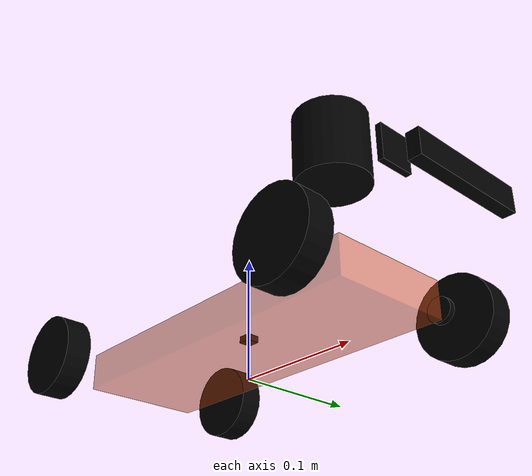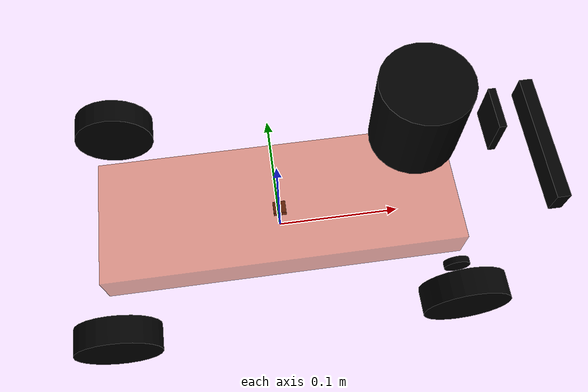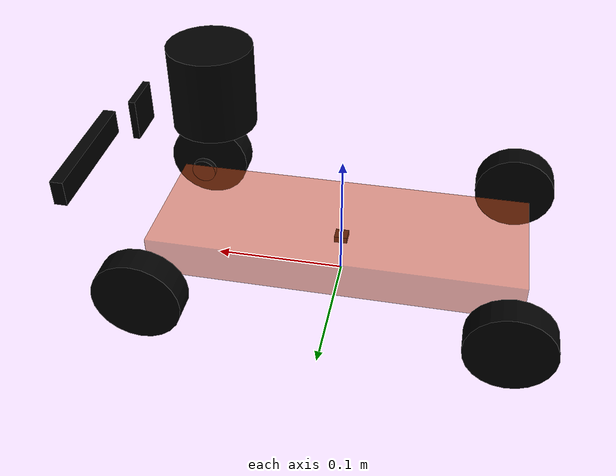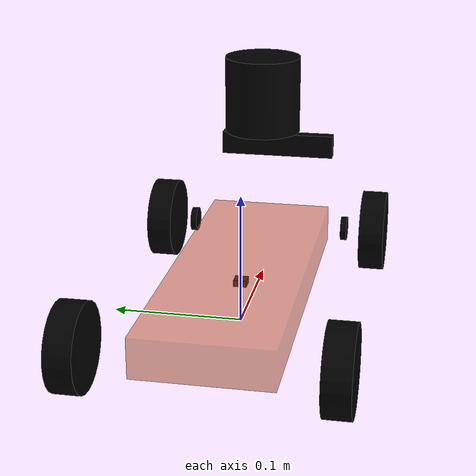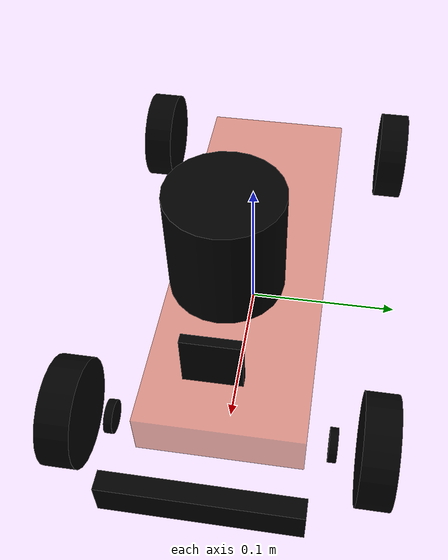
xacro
<?xml version="1.0" encoding="utf-8"?>

<robot name="racecar" xmlns:xacro="http://www.ros.org/wiki/xacro">

    <link name="base_footprint">
        <origin xyz="0 0 0" rpy="0 0 0" />
    </link>

    <link name="base_link">
        <visual>
            <geometry>
                <box size="0.28 0.1 0.03" />
            </geometry>
            <origin xyz="0 0 0" rpy="0 0 0" />
            <material name="yellow">
                <color rgba="0.8 0.3 0.1 0.5" />
            </material>
        </visual>
        <collision>
            <geometry>
                <box size="0.28 0.1 0.03" />
            </geometry>
            <origin xyz="0.0 0.0 0.0" rpy="0.0 0.0 0.0" />
        </collision>

    </link>

    <joint name="base_link2base_footprint" type="fixed">
        <parent link="base_footprint" />
        <child link="base_link" />
        <origin xyz="0 0 0.032" rpy="0 0 0" />
    </joint>

    <link name="base_inertia">
        <inertial>
            <origin xyz="0 0 0" />
            <mass value="4" />
            <inertia ixx="0.0264" ixy="0" ixz="0" iyy="0.0294" iyz="0" izz="0.00364" />
        </inertial>
    </link>

    <joint name="chassis_inertia_joint" type="fixed">
        <origin xyz="0 0 0" rpy="0 0 0" />
        <parent link="base_link" />
        <child link="base_inertia" />
    </joint>

    <link name="left_steering_hinge">
        <visual>
            <geometry>
                <cylinder radius="0.01" length="0.005" />
            </geometry>
            <origin xyz="0 0 0" rpy="1.57 0 0" />
            <material name="black">
                <color rgba="0.0 0.0 0.0 1.0" />
            </material>
        </visual>
        <collision>
            <geometry>
                <cylinder radius="0.01" length="0.005" />
            </geometry>
            <origin xyz="0.0 0.0 0.0" rpy="1.57 0.0 0.0" />
        </collision>
        <inertial>
            <origin xyz="0 0 0" />
            <mass value="0.5" />
            <inertia ixx="1.35E-05" ixy="0" ixz="0" iyy="1.35E-05" iyz="0" izz="2.5E-05" />
        </inertial>
    </link>

    <joint name="left_steering_hinge_joint" type="revolute">
        <parent link="base_link" />
        <child link="left_steering_hinge" />
        <origin xyz="0.13 0.065 0" />
        <axis xyz="0 0 1" />
        <limit lower="-0.6" upper="0.6" effort="5.0" velocity="1000.0" />
    </joint>

    <link name="left_front_wheel">
        <visual>
            <geometry>
                <cylinder radius="0.033" length="0.02" />
            </geometry>
            <origin xyz="0 0 0" rpy="1.57 0 0" />
            <material name="black">
                <color rgba="0.0 0.0 0.0 1.0" />
            </material>
        </visual>
        <collision>
            <geometry>
                <cylinder radius="0.032" length="0.02" />
            </geometry>
            <origin xyz="0.0 0.0 0.0" rpy="1.57 0.0 0.0" />
        </collision>
        <inertial>
            <origin xyz="0 0 0" />
            <mass value="2.0" />
            <inertia ixx="6.64E-04" ixy="0" ixz="0" iyy="6.64E-04" iyz="0" izz="1.02E-03" />
        </inertial>
    </link>

    <joint name="left_front_wheel_joint" type="continuous">
        <parent link="left_steering_hinge" />
        <child link="left_front_wheel" />
        <origin xyz="0 0.025 0" />
        <axis xyz="0 1 0" />
        <limit effort="10" velocity="1000" />
    </joint>

    <link name="right_steering_hinge">
        <visual>
            <geometry>
                <cylinder radius="0.01" length="0.005" />
            </geometry>
            <origin xyz="0 0 0" rpy="1.57 0 0" />
            <material name="black">
                <color rgba="0.0 0.0 0.0 1.0" />
            </material>
        </visual>
        <collision>
            <geometry>
                <cylinder radius="0.01" length="0.005" />
            </geometry>
            <origin xyz="0.0 0.0 0.0" rpy="1.57 0.0 0.0" />
        </collision>
        <inertial>
            <origin xyz="0 0 0" />
            <mass value="0.5" />
            <inertia ixx="1.35E-05" ixy="0" ixz="0" iyy="1.35E-05" iyz="0" izz="2.5E-05" />
        </inertial>
    </link>

    <joint name="right_steering_hinge_joint" type="revolute">
        <parent link="base_link" />
        <child link="right_steering_hinge" />
        <origin xyz="0.13 -0.065 0" />
        <axis xyz="0 0 1" />
        <limit lower="-0.6" upper="0.6" effort="5.0" velocity="1000.0" />
    </joint>

    <link name="right_front_wheel">
        <visual>
            <geometry>
                <cylinder radius="0.033" length="0.02" />
            </geometry>
            <origin xyz="0 0 0" rpy="1.57 0 0" />
            <material name="black">
                <color rgba="0.0 0.0 0.0 1.0" />
            </material>
        </visual>
        <collision>
            <geometry>
                <cylinder radius="0.032" length="0.02" />
            </geometry>
            <origin xyz="0.0 0.0 0.0" rpy="1.57 0.0 0.0" />
        </collision>
        <inertial>
            <origin xyz="0 0 0" />
            <mass value="2.0" />
            <inertia ixx="6.64E-04" ixy="0" ixz="0" iyy="6.64E-04" iyz="0" izz="1.02E-03" />
        </inertial>
    </link>

    <joint name="right_front_wheel_joint" type="continuous">
        <parent link="right_steering_hinge" />
        <child link="right_front_wheel" />
        <origin xyz="0 -0.025 0" />
        <axis xyz="0 1 0" />
        <limit effort="10" velocity="1000" />
    </joint>

    <link name="left_rear_wheel">
        <visual>
            <geometry>
                <cylinder radius="0.032" length="0.02" />
            </geometry>
            <origin xyz="0 0 0" rpy="1.57 0 0" />
            <material name="black">
                <color rgba="0.0 0.0 0.0 1.0" />
            </material>
        </visual>
        <collision>
            <geometry>
                <cylinder radius="0.032" length="0.02" />
            </geometry>
            <origin xyz="0.0 0.0 0.0" rpy="1.57 0.0 0.0" />
        </collision>
        <inertial>
            <origin xyz="0 0 0" />
            <mass value="2.0" />
            <inertia ixx="6.64E-04" ixy="0" ixz="0" iyy="6.64E-04" iyz="0" izz="1.02E-03" />
        </inertial>
    </link>

    <joint name="left_rear_wheel_joint" type="continuous">
        <parent link="base_link" />
        <child link="left_rear_wheel" />
        <origin xyz="-0.13 0.09 0" />
        <axis xyz="0 1 0" />
        <limit effort="10" velocity="1000" />
    </joint>

    <link name="right_rear_wheel">
        <visual>
            <geometry>
                <cylinder radius="0.032" length="0.02" />
            </geometry>
            <origin xyz="0 0 0" rpy="1.57 0 0" />
            <material name="black">
                <color rgba="0.0 0.0 0.0 1.0" />
            </material>
        </visual>
        <collision>
            <geometry>
                <cylinder radius="0.032" length="0.02" />
            </geometry>
            <origin xyz="0.0 0.0 0.0" rpy="1.57 0.0 0.0" />
        </collision>
        <inertial>
            <origin xyz="0 0 0" />
            <mass value="2.0" />
            <inertia ixx="6.64E-04" ixy="0" ixz="0" iyy="6.64E-04" iyz="0" izz="1.02E-03" />
        </inertial>
    </link>

    <joint name="right_rear_wheel_joint" type="continuous">
        <parent link="base_link" />
        <child link="right_rear_wheel" />
        <origin xyz="-0.13 -0.09 0" />
        <axis xyz="0 1 0" />
        <limit effort="10" velocity="1000" />
    </joint>

    <link name="camera">
        <visual>
            <geometry>
                <box size="0.005 0.03 0.03" />
            </geometry>
            <origin xyz="0 0 0" rpy="0 0 0" />
            <material name="black">
                <color rgba="0.0 0.0 0.0 1.0" />
            </material>
        </visual>
        <collision>
            <geometry>
                <box size="0.005 0.03 0.03" />
            </geometry>
            <origin xyz="0.0 0.0 0.0" rpy="0.0 0.0 0.0" />
        </collision>
        <inertial>
            <origin xyz="0 0 0" />
            <mass value="0.05" />
            <inertia ixx="6.64E-04" ixy="0" ixz="0" iyy="6.64E-04" iyz="0" izz="1.02E-03" />
        </inertial>
    </link>

    <joint name="camera_joint" type="fixed">
        <parent link="base_link" />
        <child link="camera" />
        <origin xyz="0.14851 0.0022137 0.0975" />
        <axis xyz="0 0 1" />
    </joint>

    <link name="real_sense">
        <visual>
            <geometry>
                <box size="0.01 0.1 0.02" />
            </geometry>
            <origin xyz="0 0 0" rpy="0 0 0" />
            <material name="black">
                <color rgba="0.0 0.0 0.0 1.0" />
            </material>
        </visual>
        <collision>
            <geometry>
                <box size="0.01 0.1 0.02" />
            </geometry>
            <origin xyz="0.0 0.0 0.0" rpy="0.0 0.0 0.0" />
        </collision>
        <inertial>
            <origin xyz="0 0 0" />
            <mass value="0.05" />
            <inertia ixx="6.64E-04" ixy="0" ixz="0" iyy="6.64E-04" iyz="0" izz="1.02E-03" />
        </inertial>
    </link>

    <joint name="realsense_joint" type="fixed">
        <parent link="base_link" />
        <child link="real_sense" />
        <origin xyz="0.19864 0.0038046 0.052021" />
        <axis xyz="0 0 1" />
    </joint>

    <link name="realsense_depth" />
    <joint name="realsense_depth_joint" type="fixed">
        <origin xyz="0 0 0" rpy="-1.5708 0 -1.5708" />
        <parent link="real_sense" />
        <child link="realsense_depth" />
    </joint>

    <link name="laser_link">
        <visual>
            <geometry>
                <cylinder radius="0.03" length="0.06" />
            </geometry>
            <origin xyz="0 0 0" rpy="0 0 0" />
            <material name="black">
                <color rgba="0.0 0.0 0.0 1.0" />
            </material>
        </visual>
        <collision>
            <geometry>
                <cylinder radius="0.03" length="0.06" />
            </geometry>
            <origin xyz="0.0 0.0 0.0" rpy="0.0 0.0 0.0" />
        </collision>
        <inertial>
            <origin xyz="0 0 0" />
            <mass value="0.1" />
            <inertia ixx="6.64E-04" ixy="0" ixz="0" iyy="6.64E-04" iyz="0" izz="1.02E-03" />
        </inertial>
    </link>

    <joint name="laser_joint" type="fixed">
        <parent link="base_link" />
        <child link="laser_link" />
        <origin xyz="0.093603 0 0.12377" />
        <axis xyz="0 0 1" />
    </joint>

    <link name="imu_link">
        <visual>
            <geometry>
                <box size="0.01 0.01 0.005" />
            </geometry>
            <origin xyz="0 0 0" rpy="0 0 0" />
            <material name="black">
                <color rgba="0.0 0.0 0.0 1.0" />
            </material>
        </visual>
        <collision>
            <geometry>
                <box size="0.01 0.01 0.005" />
            </geometry>
            <origin xyz="0.0 0.0 0.0" rpy="0.0 0.0 0.0" />
        </collision>
        <inertial>
            <origin xyz="0 0 0" />
            <mass value="0.05" />
            <inertia ixx="6.64E-04" ixy="0" ixz="0" iyy="6.64E-04" iyz="0" izz="1.02E-03" />
        </inertial>
    </link>

    <joint name="imu_joint" type="fixed">
        <parent link="base_link" />
        <child link="imu_link" />
        <origin xyz="0 0 0" />
        <axis xyz="0 0 1" />
    </joint>

    <xacro:include filename="./racecar_gazebo.xacro" />

</robot>
